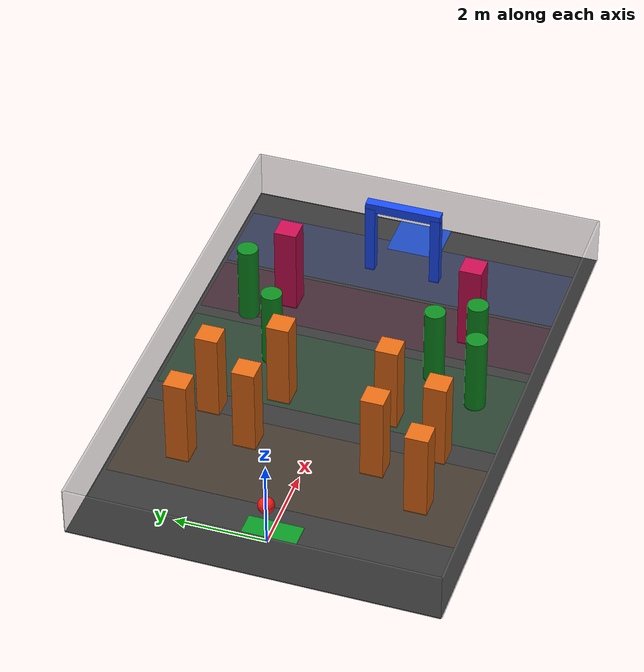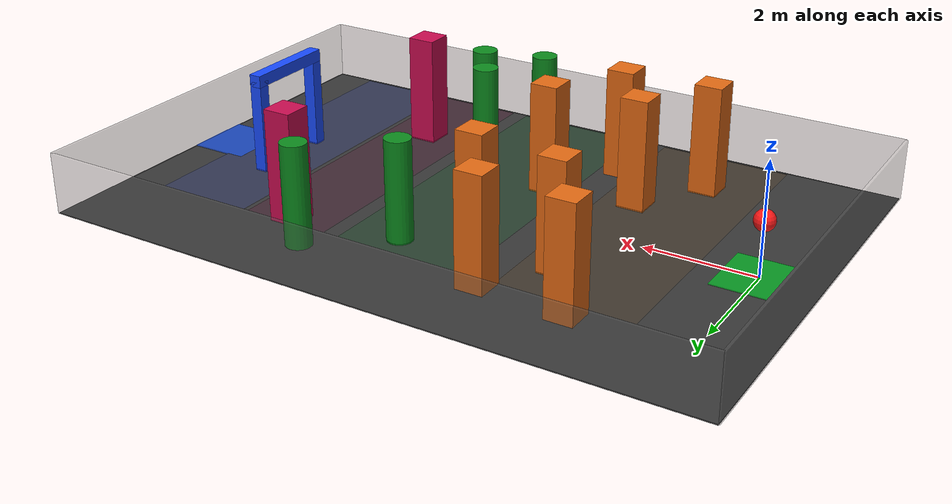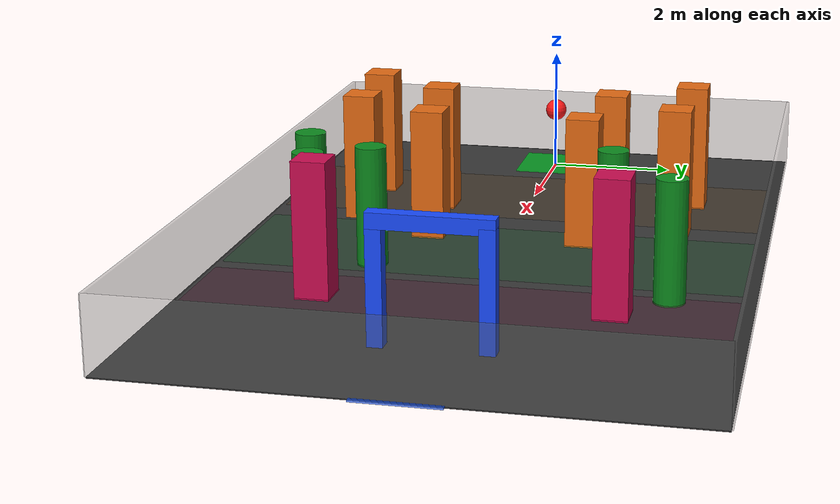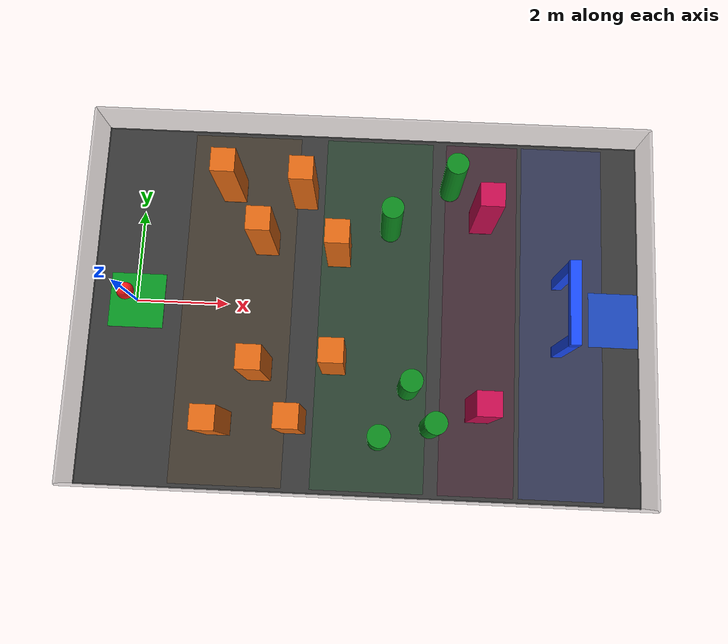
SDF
<?xml version="1.0" ?>
<sdf version="1.6">
  <world name="competition_smoke">
    <include>
      <uri>model://sun</uri>
    </include>

    <physics name="default_physics" type="ode">
      <max_step_size>0.001</max_step_size>
      <real_time_update_rate>1000</real_time_update_rate>
    </physics>

    <model name="ground_plane_competition">
      <static>true</static>
      <pose>5 0 -0.01 0 0 0</pose>
      <link name="link">
        <collision name="collision">
          <geometry><box><size>12 8 0.02</size></box></geometry>
        </collision>
        <visual name="visual">
          <geometry><box><size>12 8 0.02</size></box></geometry>
          <material><ambient>0.18 0.18 0.18 1</ambient><diffuse>0.22 0.22 0.22 1</diffuse></material>
        </visual>
      </link>
    </model>

    <model name="takeoff_zone">
      <static>true</static>
      <pose>0 0 0.01 0 0 0</pose>
      <link name="link">
        <visual name="visual">
          <geometry><box><size>1.2 1.2 0.02</size></box></geometry>
          <material><ambient>0 0.8 0.15 0.7</ambient><diffuse>0 0.8 0.15 0.7</diffuse></material>
        </visual>
      </link>
    </model>

    <model name="landing_zone">
      <static>true</static>
      <pose>10.5 0 0.012 0 0 0</pose>
      <link name="link">
        <visual name="visual">
          <geometry><box><size>1.2 1.2 0.024</size></box></geometry>
          <material><ambient>0.1 0.35 1 0.7</ambient><diffuse>0.1 0.35 1 0.7</diffuse></material>
        </visual>
      </link>
    </model>

    <!-- Field boundaries -->
    <model name="field_boundary">
      <static>true</static>
      <link name="north"><pose>5 4 0.55 0 0 0</pose><visual name="v"><geometry><box><size>12 0.05 1.1</size></box></geometry><material><ambient>0.4 0.4 0.4 0.35</ambient><diffuse>0.4 0.4 0.4 0.35</diffuse></material></visual></link>
      <link name="south"><pose>5 -4 0.55 0 0 0</pose><visual name="v"><geometry><box><size>12 0.05 1.1</size></box></geometry><material><ambient>0.4 0.4 0.4 0.35</ambient><diffuse>0.4 0.4 0.4 0.35</diffuse></material></visual></link>
      <link name="east"><pose>11 0 0.55 0 0 0</pose><visual name="v"><geometry><box><size>0.05 8 1.1</size></box></geometry><material><ambient>0.4 0.4 0.4 0.35</ambient><diffuse>0.4 0.4 0.4 0.35</diffuse></material></visual></link>
      <link name="west"><pose>-1 0 0.55 0 0 0</pose><visual name="v"><geometry><box><size>0.05 8 1.1</size></box></geometry><material><ambient>0.4 0.4 0.4 0.35</ambient><diffuse>0.4 0.4 0.4 0.35</diffuse></material></visual></link>
    </model>

    <!-- Region floor hints -->
    <model name="region_hints">
      <static>true</static>
      <link name="area1"><pose>2.2 0 0.015 0 0 0</pose><visual name="v"><geometry><box><size>2.4 7.8 0.01</size></box></geometry><material><ambient>0.45 0.28 0.08 0.18</ambient><diffuse>0.45 0.28 0.08 0.18</diffuse></material></visual></link>
      <link name="area2"><pose>5.2 0 0.016 0 0 0</pose><visual name="v"><geometry><box><size>2.4 7.8 0.01</size></box></geometry><material><ambient>0.0 0.45 0.12 0.18</ambient><diffuse>0.0 0.45 0.12 0.18</diffuse></material></visual></link>
      <link name="area3"><pose>7.5 0 0.017 0 0 0</pose><visual name="v"><geometry><box><size>1.6 7.8 0.01</size></box></geometry><material><ambient>0.45 0.0 0.2 0.18</ambient><diffuse>0.45 0.0 0.2 0.18</diffuse></material></visual></link>
      <link name="area4"><pose>9.3 0 0.018 0 0 0</pose><visual name="v"><geometry><box><size>1.8 7.8 0.01</size></box></geometry><material><ambient>0.15 0.25 0.8 0.18</ambient><diffuse>0.15 0.25 0.8 0.18</diffuse></material></visual></link>
    </model>

    <!-- Area 1 structured cuboid obstacles -->
    <model name="area1_boxes">
      <static>true</static>
      <link name="b1"><pose>2.0 -2.6 1 0 0 0</pose><collision name="c"><geometry><box><size>0.5 0.5 2</size></box></geometry></collision><visual name="v"><geometry><box><size>0.5 0.5 2</size></box></geometry><material><ambient>0.9 0.42 0.08 1</ambient><diffuse>0.9 0.42 0.08 1</diffuse></material></visual></link>
      <link name="b2"><pose>2.8 -1.4 1 0 0 0</pose><collision name="c"><geometry><box><size>0.5 0.5 2</size></box></geometry></collision><visual name="v"><geometry><box><size>0.5 0.5 2</size></box></geometry><material><ambient>0.9 0.42 0.08 1</ambient><diffuse>0.9 0.42 0.08 1</diffuse></material></visual></link>
      <link name="b3"><pose>3.6 -2.5 1 0 0 0</pose><collision name="c"><geometry><box><size>0.5 0.5 2</size></box></geometry></collision><visual name="v"><geometry><box><size>0.5 0.5 2</size></box></geometry><material><ambient>0.9 0.42 0.08 1</ambient><diffuse>0.9 0.42 0.08 1</diffuse></material></visual></link>
      <link name="b4"><pose>4.4 -1.2 1 0 0 0</pose><collision name="c"><geometry><box><size>0.5 0.5 2</size></box></geometry></collision><visual name="v"><geometry><box><size>0.5 0.5 2</size></box></geometry><material><ambient>0.9 0.42 0.08 1</ambient><diffuse>0.9 0.42 0.08 1</diffuse></material></visual></link>
      <link name="b5"><pose>2.0 2.6 1 0 0 0</pose><collision name="c"><geometry><box><size>0.5 0.5 2</size></box></geometry></collision><visual name="v"><geometry><box><size>0.5 0.5 2</size></box></geometry><material><ambient>0.9 0.42 0.08 1</ambient><diffuse>0.9 0.42 0.08 1</diffuse></material></visual></link>
      <link name="b6"><pose>2.8 1.4 1 0 0 0</pose><collision name="c"><geometry><box><size>0.5 0.5 2</size></box></geometry></collision><visual name="v"><geometry><box><size>0.5 0.5 2</size></box></geometry><material><ambient>0.9 0.42 0.08 1</ambient><diffuse>0.9 0.42 0.08 1</diffuse></material></visual></link>
      <link name="b7"><pose>3.6 2.5 1 0 0 0</pose><collision name="c"><geometry><box><size>0.5 0.5 2</size></box></geometry></collision><visual name="v"><geometry><box><size>0.5 0.5 2</size></box></geometry><material><ambient>0.9 0.42 0.08 1</ambient><diffuse>0.9 0.42 0.08 1</diffuse></material></visual></link>
      <link name="b8"><pose>4.4 1.2 1 0 0 0</pose><collision name="c"><geometry><box><size>0.5 0.5 2</size></box></geometry></collision><visual name="v"><geometry><box><size>0.5 0.5 2</size></box></geometry><material><ambient>0.9 0.42 0.08 1</ambient><diffuse>0.9 0.42 0.08 1</diffuse></material></visual></link>
    </model>

    <!-- Area 2 forest cylinders -->
    <model name="area2_trees">
      <static>true</static>
      <link name="t1"><pose>5.4 -2.8 0.9 0 0 0</pose><collision name="c"><geometry><cylinder><radius>0.23</radius><length>1.8</length></cylinder></geometry></collision><visual name="v"><geometry><cylinder><radius>0.23</radius><length>1.8</length></cylinder></geometry><material><ambient>0.05 0.55 0.12 1</ambient><diffuse>0.05 0.55 0.12 1</diffuse></material></visual></link>
      <link name="t2"><pose>6.0 -1.7 0.9 0 0 0</pose><collision name="c"><geometry><cylinder><radius>0.23</radius><length>1.8</length></cylinder></geometry></collision><visual name="v"><geometry><cylinder><radius>0.23</radius><length>1.8</length></cylinder></geometry><material><ambient>0.05 0.55 0.12 1</ambient><diffuse>0.05 0.55 0.12 1</diffuse></material></visual></link>
      <link name="t3"><pose>6.5 -2.5 0.9 0 0 0</pose><collision name="c"><geometry><cylinder><radius>0.23</radius><length>1.8</length></cylinder></geometry></collision><visual name="v"><geometry><cylinder><radius>0.23</radius><length>1.8</length></cylinder></geometry><material><ambient>0.05 0.55 0.12 1</ambient><diffuse>0.05 0.55 0.12 1</diffuse></material></visual></link>
      <link name="t4"><pose>5.5 1.8 0.9 0 0 0</pose><collision name="c"><geometry><cylinder><radius>0.23</radius><length>1.8</length></cylinder></geometry></collision><visual name="v"><geometry><cylinder><radius>0.23</radius><length>1.8</length></cylinder></geometry><material><ambient>0.05 0.55 0.12 1</ambient><diffuse>0.05 0.55 0.12 1</diffuse></material></visual></link>
      <link name="t5"><pose>6.8 2.8 0.9 0 0 0</pose><collision name="c"><geometry><cylinder><radius>0.23</radius><length>1.8</length></cylinder></geometry></collision><visual name="v"><geometry><cylinder><radius>0.23</radius><length>1.8</length></cylinder></geometry><material><ambient>0.05 0.55 0.12 1</ambient><diffuse>0.05 0.55 0.12 1</diffuse></material></visual></link>
    </model>

    <!-- Area 3 moving obstacles represented as static placeholders for Gazebo-lite -->
    <model name="area3_static_moving_placeholders">
      <static>true</static>
      <link name="m1"><pose>7.5 -2.1 1 0 0 0</pose><collision name="c"><geometry><box><size>0.5 0.5 2</size></box></geometry></collision><visual name="v"><geometry><box><size>0.5 0.5 2</size></box></geometry><material><ambient>0.8 0.05 0.32 1</ambient><diffuse>0.8 0.05 0.32 1</diffuse></material></visual></link>
      <link name="m2"><pose>7.5 2.1 1 0 0 0</pose><collision name="c"><geometry><box><size>0.5 0.5 2</size></box></geometry></collision><visual name="v"><geometry><box><size>0.5 0.5 2</size></box></geometry><material><ambient>0.8 0.05 0.32 1</ambient><diffuse>0.8 0.05 0.32 1</diffuse></material></visual></link>
    </model>

    <!-- Area 4 arch, center opening kept clear for smoke test -->
    <model name="area4_gate">
      <static>true</static>
      <link name="left_post"><pose>9.2 -0.75 0.85 0 0 0</pose><collision name="c"><geometry><box><size>0.22 0.22 1.7</size></box></geometry></collision><visual name="v"><geometry><box><size>0.22 0.22 1.7</size></box></geometry><material><ambient>0.1 0.3 1 1</ambient><diffuse>0.1 0.3 1 1</diffuse></material></visual></link>
      <link name="right_post"><pose>9.2 0.75 0.85 0 0 0</pose><collision name="c"><geometry><box><size>0.22 0.22 1.7</size></box></geometry></collision><visual name="v"><geometry><box><size>0.22 0.22 1.7</size></box></geometry><material><ambient>0.1 0.3 1 1</ambient><diffuse>0.1 0.3 1 1</diffuse></material></visual></link>
      <link name="top_beam"><pose>9.2 0 1.72 0 0 0</pose><collision name="c"><geometry><box><size>0.22 1.72 0.22</size></box></geometry></collision><visual name="v"><geometry><box><size>0.22 1.72 0.22</size></box></geometry><material><ambient>0.1 0.3 1 1</ambient><diffuse>0.1 0.3 1 1</diffuse></material></visual></link>
    </model>

    <model name="mock_drone">
      <static>false</static>
      <pose>0 0 1 0 0 0</pose>
      <link name="base_link">
        <inertial><mass>1.0</mass><inertia><ixx>0.01</ixx><iyy>0.01</iyy><izz>0.02</izz></inertia></inertial>
        <collision name="collision"><geometry><sphere><radius>0.18</radius></sphere></geometry></collision>
        <visual name="visual"><geometry><sphere><radius>0.18</radius></sphere></geometry><material><ambient>1 0.1 0.1 1</ambient><diffuse>1 0.1 0.1 1</diffuse></material></visual>
      </link>
    </model>
  </world>
</sdf>
